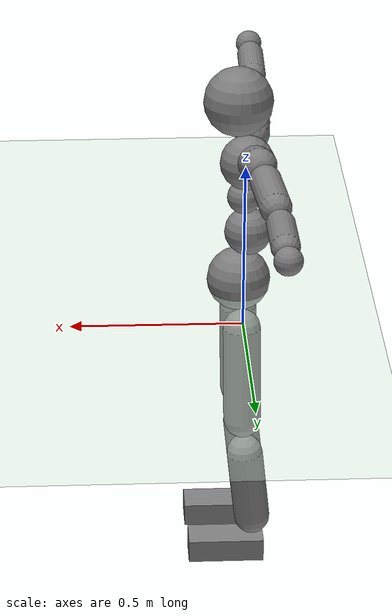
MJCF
<mujoco model="humanoid">
  <compiler coordinate="local"/>
  <statistic extent="2" center="0 0 1"/>
  <option timestep="0.00555"/>
  <default>
    <motor ctrlrange="-1 1" ctrllimited="true"/>
    <geom type="capsule" condim="1" friction="1.0 0.05 0.05" solimp=".9 .99 .003" solref=".015 1"/>
    <joint type="hinge" damping="0.1" stiffness="5" armature=".007" limited="true" solimplimit="0 .99 .01"/>
    <site size=".04" group="3"/>
    <default class="force-torque">
      <site type="box" size=".01 .01 .02" rgba="1 0 0 1"/>
    </default>
    <default class="touch">
      <site type="capsule" rgba="0 0 1 .3"/>
    </default>
  </default>
  <asset>
    <texture type="skybox" builtin="gradient" rgb1=".4 .5 .6" rgb2="0 0 0" width="100" height="100"/>
    <texture builtin="flat" height="1278" mark="cross" markrgb="1 1 1" name="texgeom" random="0.01" rgb1="0.8 0.6 0.4" rgb2="0.8 0.6 0.4" type="cube" width="127"/>
    <texture builtin="checker" height="100" name="texplane" rgb1="0 0 0" rgb2="0.8 0.8 0.8" type="2d" width="100"/>
    <material name="MatPlane" reflectance="0.5" shininess="1" specular="1" texrepeat="60 60" texture="texplane"/>
    <material name="geom" texture="texgeom" texuniform="true"/>
  </asset>
  <worldbody>
    <light cutoff="100" diffuse="1 1 1" dir="-0 0 -1.3" directional="true" exponent="1" pos="0 0 1.3" specular=".1 .1 .1"/>
    <geom conaffinity="1" condim="3" name="floor" pos="0 0 0" rgba="0.8 0.9 0.8 1" size="100 100 .2" type="plane" material="MatPlane"/>
    <body name="Pelvis" pos="-0.0018 -0.2233 0.0282">
      <freejoint name="Pelvis"/>
      <geom type="sphere" contype="1" conaffinity="1" density="1999.2020898" size="0.0942" pos="0.0000 0.0000 0.0000"/>
      <body name="L_Hip" pos="-0.0068 0.0695 -0.0914">
        <joint name="L_Hip_x" type="hinge" pos="0.0000 0.0000 0.0000" axis="1.0000 0.0000 0.0000" stiffness="500" damping="50" armature="0.02" range="-90.0000 90.0000"/>
        <joint name="L_Hip_y" type="hinge" pos="0.0000 0.0000 0.0000" axis="0.0000 1.0000 0.0000" stiffness="500" damping="50" armature="0.02" range="-90.0000 90.0000"/>
        <joint name="L_Hip_z" type="hinge" pos="0.0000 0.0000 0.0000" axis="0.0000 0.0000 1.0000" stiffness="500" damping="50" armature="0.02" range="-90.0000 90.0000"/>
        <geom type="capsule" contype="1" conaffinity="1" density="1195.48521" fromto="-0.0004 0.0034 -0.0375 -0.0040 0.0308 -0.3377" size="0.0564"/>
        <body name="L_Knee" pos="-0.0045 0.0343 -0.3752">
          <joint name="L_Knee_x" type="hinge" pos="0.0000 0.0000 0.0000" axis="1.0000 0.0000 0.0000" stiffness="500" damping="50" armature="0.02" range="-5.6250 5.6250"/>
          <joint name="L_Knee_y" type="hinge" pos="0.0000 0.0000 0.0000" axis="0.0000 1.0000 0.0000" stiffness="500" damping="50" armature="0.02" range="0.0000 180.0000"/>
          <joint name="L_Knee_z" type="hinge" pos="0.0000 0.0000 0.0000" axis="0.0000 0.0000 1.0000" stiffness="500" damping="50" armature="0.02" range="-5.6250 5.6250"/>
          <geom type="capsule" contype="1" conaffinity="1" density="1044.006" fromto="-0.0087 -0.0027 -0.0796 -0.0350 -0.0109 -0.3184" size="0.0541"/>
          <body name="L_Ankle" pos="-0.0437 -0.0136 -0.3980">
            <joint name="L_Ankle_x" type="hinge" pos="0.0000 0.0000 0.0000" axis="1.0000 0.0000 0.0000" stiffness="400" damping="40" armature="0.01" range="-45.0000 45.0000"/>
            <joint name="L_Ankle_y" type="hinge" pos="0.0000 0.0000 0.0000" axis="0.0000 1.0000 0.0000" stiffness="400" damping="40" armature="0.01" range="-90.0000 90.0000"/>
            <joint name="L_Ankle_z" type="hinge" pos="0.0000 0.0000 0.0000" axis="0.0000 0.0000 1.0000" stiffness="400" damping="40" armature="0.01" range="-45.0000 45.0000"/>
            <geom type="box" contype="1" conaffinity="1" density="628.611" pos="0.0896 0.0132 -0.0129" size="0.1150 0.0483 0.0358" quat="1.0000 0.0000 0.0000 0.0000"/>
          </body>
        </body>
      </body>
      <body name="R_Hip" pos="-0.0043 -0.0677 -0.0905">
        <joint name="R_Hip_x" type="hinge" pos="0.0000 0.0000 0.0000" axis="1.0000 0.0000 0.0000" stiffness="500" damping="50" armature="0.02" range="-90.0000 90.0000"/>
        <joint name="R_Hip_y" type="hinge" pos="0.0000 0.0000 0.0000" axis="0.0000 1.0000 0.0000" stiffness="500" damping="50" armature="0.02" range="-90.0000 90.0000"/>
        <joint name="R_Hip_z" type="hinge" pos="0.0000 0.0000 0.0000" axis="0.0000 0.0000 1.0000" stiffness="500" damping="50" armature="0.02" range="-90.0000 90.0000"/>
        <geom type="capsule" contype="1" conaffinity="1" density="1223.393" fromto="-0.0009 -0.0038 -0.0383 -0.0080 -0.0345 -0.3443" size="0.0554"/>
        <body name="R_Knee" pos="-0.0089 -0.0383 -0.3826">
          <joint name="R_Knee_x" type="hinge" pos="0.0000 0.0000 0.0000" axis="1.0000 0.0000 0.0000" stiffness="500" damping="50" armature="0.02" range="-5.6250 5.6250"/>
          <joint name="R_Knee_y" type="hinge" pos="0.0000 0.0000 0.0000" axis="0.0000 1.0000 0.0000" stiffness="500" damping="50" armature="0.02" range="0.0000 180.0000"/>
          <joint name="R_Knee_z" type="hinge" pos="0.0000 0.0000 0.0000" axis="0.0000 0.0000 1.0000" stiffness="500" damping="50" armature="0.02" range="-5.6250 5.6250"/>
          <geom type="capsule" contype="1" conaffinity="1" density="1043.554" fromto="-0.0085 0.0032 -0.0797 -0.0338 0.0126 -0.3187" size="0.0541"/>
          <body name="R_Ankle" pos="-0.0423 0.0158 -0.3984">
            <joint name="R_Ankle_x" type="hinge" pos="0.0000 0.0000 0.0000" axis="1.0000 0.0000 0.0000" stiffness="400" damping="40" armature="0.01" range="-45.0000 45.0000"/>
            <joint name="R_Ankle_y" type="hinge" pos="0.0000 0.0000 0.0000" axis="0.0000 1.0000 0.0000" stiffness="400" damping="40" armature="0.01" range="-90.0000 90.0000"/>
            <joint name="R_Ankle_z" type="hinge" pos="0.0000 0.0000 0.0000" axis="0.0000 0.0000 1.0000" stiffness="400" damping="40" armature="0.01" range="-45.0000 45.0000"/>
            <geom type="box" contype="1" conaffinity="1" density="620.517" pos="0.0917 -0.0127 -0.0091" size="0.1165 0.0483 0.0358" quat="1.0000 0.0000 0.0000 0.0000"/>
          </body>
        </body>
      </body>
      <body name="Torso" pos="-0.0267 -0.0025 0.1090">
        <joint name="Torso_x" type="hinge" pos="0.0000 0.0000 0.0000" axis="1.0000 0.0000 0.0000" stiffness="500" damping="50" armature="0.02" range="-60.0000 60.0000"/>
        <joint name="Torso_y" type="hinge" pos="0.0000 0.0000 0.0000" axis="0.0000 1.0000 0.0000" stiffness="500" damping="50" armature="0.02" range="-30.0000 60.0000"/>
        <joint name="Torso_z" type="hinge" pos="0.0000 0.0000 0.0000" axis="0.0000 0.0000 1.0000" stiffness="500" damping="50" armature="0.02" range="-60.0000 60.0000"/>
        <geom type="sphere" contype="1" conaffinity="1" density="2088.0388" size="0.07" pos="0.00055 0.00275 0.0476"/>
        <body name="Spine" pos="0.0011 0.0055 0.1352">
          <joint name="Spine_x" type="hinge" pos="0.0000 0.0000 0.0000" axis="1.0000 0.0000 0.0000" stiffness="500" damping="50" armature="0.02" range="-60.0000 60.0000"/>
          <joint name="Spine_y" type="hinge" pos="0.0000 0.0000 0.0000" axis="0.0000 1.0000 0.0000" stiffness="500" damping="50" armature="0.02" range="-30.0000 60.0000"/>
          <joint name="Spine_z" type="hinge" pos="0.0000 0.0000 0.0000" axis="0.0000 0.0000 1.0000" stiffness="500" damping="50" armature="0.02" range="-60.0000 60.0000"/>
          <geom type="sphere" contype="1" conaffinity="1" density="1909.8591916" size="0.05" pos="0.0127 0.00075 0.02645"/>
          <body name="Chest" pos="0.0254 0.0015 0.0529">
            <joint name="Chest_x" type="hinge" pos="0.0000 0.0000 0.0000" axis="1.0000 0.0000 0.0000" stiffness="500" damping="50" armature="0.02" range="-60.0000 60.0000"/>
            <joint name="Chest_y" type="hinge" pos="0.0000 0.0000 0.0000" axis="0.0000 1.0000 0.0000" stiffness="500" damping="50" armature="0.02" range="-30.0000 60.0000"/>
            <joint name="Chest_z" type="hinge" pos="0.0000 0.0000 0.0000" axis="0.0000 0.0000 1.0000" stiffness="500" damping="50" armature="0.02" range="-60.0000 60.0000"/>
            <geom type="sphere" contype="1" conaffinity="1" density="2331.3718" size="0.08" pos="-0.02 -0.0010 0.0833"/>
            <body name="Neck" pos="-0.0429 -0.0028 0.2139">
              <joint name="Neck_x" type="hinge" pos="0.0000 0.0000 0.0000" axis="1.0000 0.0000 0.0000" stiffness="100" damping="10" armature="0.01" range="-60.0000 60.0000"/>
              <joint name="Neck_y" type="hinge" pos="0.0000 0.0000 0.0000" axis="0.0000 1.0000 0.0000" stiffness="100" damping="10" armature="0.01" range="-60.0000 60.0000"/>
              <joint name="Neck_z" type="hinge" pos="0.0000 0.0000 0.0000" axis="0.0000 0.0000 1.0000" stiffness="100" damping="10" armature="0.01" range="-60.0000 60.0000"/>
              <geom type="sphere" contype="1" conaffinity="1" density="924.0978" size="0.1011" pos="0.0513 0.0052 0.0650"/>
            </body>
            <body name="L_Thorax" pos="-0.0341 0.0788 0.1217">
              <joint name="L_Thorax_x" type="hinge" pos="0.0000 0.0000 0.0000" axis="1.0000 0.0000 0.0000" stiffness="400" damping="40" armature="0.02" range="-90.0000 90.0000"/>
              <joint name="L_Thorax_y" type="hinge" pos="0.0000 0.0000 0.0000" axis="0.0000 1.0000 0.0000" stiffness="400" damping="40" armature="0.02" range="-90.0000 90.0000"/>
              <joint name="L_Thorax_z" type="hinge" pos="0.0000 0.0000 0.0000" axis="0.0000 0.0000 1.0000" stiffness="400" damping="40" armature="0.02" range="-90.0000 90.0000"/>
              <geom type="capsule" contype="1" conaffinity="1" density="921.21832" fromto="-0.0018 0.0182 0.0061 -0.0071 0.0728 0.0244" size="0.0521"/>
              <body name="L_Shoulder" pos="-0.0089 0.0910 0.0305">
                <joint name="L_Shoulder_x" type="hinge" pos="0.0000 0.0000 0.0000" axis="1.0000 0.0000 0.0000" stiffness="400" damping="40" armature="0.02" range="-135.0000 90.0000"/>
                <joint name="L_Shoulder_y" type="hinge" pos="0.0000 0.0000 0.0000" axis="0.0000 1.0000 0.0000" stiffness="400" damping="40" armature="0.02" range="-90.0000 90.0000"/>
                <joint name="L_Shoulder_z" type="hinge" pos="0.0000 0.0000 0.0000" axis="0.0000 0.0000 1.0000" stiffness="400" damping="40" armature="0.02" range="-135.0000 60.0000"/>
                <geom type="capsule" contype="1" conaffinity="1" density="1093.45624" fromto="-0.00847662 0.08000646 -0.00397105 -0.024848 0.23459204 -0.0115118" size="0.045"/>
                <body name="L_Elbow" pos="-0.02960433  0.27946485 -0.01377947">
                  <joint name="L_Elbow_x" type="hinge" pos="0.0000 0.0000 0.0000" axis="1.0000 0.0000 0.0000" stiffness="300" damping="30" armature="0.01" range="-5.6250 5.6250"/>
                  <joint name="L_Elbow_y" type="hinge" pos="0.0000 0.0000 0.0000" axis="0.0000 1.0000 0.0000" stiffness="300" damping="30" armature="0.01" range="-5.6250 5.6250"/>
                  <joint name="L_Elbow_z" type="hinge" pos="0.0000 0.0000 0.0000" axis="0.0000 0.0000 1.0000" stiffness="300" damping="30" armature="0.01" range="-180.0000 0.0000"/>
                  <geom type="capsule" contype="1" conaffinity="1" density="979.86187" fromto="-0.0002 0.0498 0.0018 -0.0009 0.1994 0.0072" size="0.04"/>
                  <body name="L_Wrist" pos="-0.0012 0.2492 0.0090">
                    <geom type="sphere" contype="1" conaffinity="1" density="1865" size="0.04" pos="0.0000 0.03 0.0000"/>
                  </body>
                </body>
              </body>
            </body>
            <body name="R_Thorax" pos="-0.0386 -0.0818 0.1188">
              <joint name="R_Thorax_x" type="hinge" pos="0.0000 0.0000 0.0000" axis="1.0000 0.0000 0.0000" stiffness="400" damping="40" armature="0.02" range="-90.0000 90.0000"/>
              <joint name="R_Thorax_y" type="hinge" pos="0.0000 0.0000 0.0000" axis="0.0000 1.0000 0.0000" stiffness="400" damping="40" armature="0.02" range="-90.0000 90.0000"/>
              <joint name="R_Thorax_z" type="hinge" pos="0.0000 0.0000 0.0000" axis="0.0000 0.0000 1.0000" stiffness="400" damping="40" armature="0.02" range="-90.0000 90.0000"/>
              <geom type="capsule" contype="1" conaffinity="1" density="943.5609" fromto="-0.0018 -0.0192 0.0065 -0.0073 -0.0768 0.0260" size="0.0511"/>
              <body name="R_Shoulder" pos="-0.0091 -0.0960 0.0326">
                <joint name="R_Shoulder_x" type="hinge" pos="0.0000 0.0000 0.0000" axis="1.0000 0.0000 0.0000" stiffness="400" damping="40" armature="0.02" range="-90.0000 135.0000"/>
                <joint name="R_Shoulder_y" type="hinge" pos="0.0000 0.0000 0.0000" axis="0.0000 1.0000 0.0000" stiffness="400" damping="40" armature="0.02" range="-90.0000 90.0000"/>
                <joint name="R_Shoulder_z" type="hinge" pos="0.0000 0.0000 0.0000" axis="0.0000 0.0000 1.0000" stiffness="400" damping="40" armature="0.02" range="-60.0000 135.0000"/>
                <geom type="capsule" contype="1" conaffinity="1" density="1110.7235919" fromto="-0.00661563 -0.0782524 -0.00414727 -0.01935161 -0.22979059 -0.01210726" size="0.045"/>
                <body name="R_Elbow" pos="-0.02307877 -0.27360209 -0.01434335">
                  <joint name="R_Elbow_x" type="hinge" pos="0.0000 0.0000 0.0000" axis="1.0000 0.0000 0.0000" stiffness="300" damping="30" armature="0.01" range="-5.6250 5.6250"/>
                  <joint name="R_Elbow_y" type="hinge" pos="0.0000 0.0000 0.0000" axis="0.0000 1.0000 0.0000" stiffness="300" damping="30" armature="0.01" range="-5.6250 5.6250"/>
                  <joint name="R_Elbow_z" type="hinge" pos="0.0000 0.0000 0.0000" axis="0.0000 0.0000 1.0000" stiffness="300" damping="30" armature="0.01" range="0.0000 180.0000"/>
                  <geom type="capsule" contype="1" conaffinity="1" density="963.23059" fromto="-0.0011 -0.0511 0.0016 -0.0044 -0.2042 0.0062" size="0.04"/>
                  <body name="R_Wrist" pos="-0.0056 -0.2553 0.0078">
                    <geom type="sphere" contype="1" conaffinity="1" density="1865" size="0.04" pos="0.0000 -0.03 0.0000"/>
                  </body>
                </body>
              </body>
            </body>
          </body>
        </body>
      </body>
    </body>
  </worldbody>
  <actuator>
    <motor name="L_Hip_x" joint="L_Hip_x" gear="500"/>
    <motor name="L_Hip_y" joint="L_Hip_y" gear="500"/>
    <motor name="L_Hip_z" joint="L_Hip_z" gear="500"/>
    <motor name="L_Knee_x" joint="L_Knee_x" gear="500"/>
    <motor name="L_Knee_y" joint="L_Knee_y" gear="500"/>
    <motor name="L_Knee_z" joint="L_Knee_z" gear="500"/>
    <motor name="L_Ankle_x" joint="L_Ankle_x" gear="500"/>
    <motor name="L_Ankle_y" joint="L_Ankle_y" gear="500"/>
    <motor name="L_Ankle_z" joint="L_Ankle_z" gear="500"/>
    <motor name="R_Hip_x" joint="R_Hip_x" gear="500"/>
    <motor name="R_Hip_y" joint="R_Hip_y" gear="500"/>
    <motor name="R_Hip_z" joint="R_Hip_z" gear="500"/>
    <motor name="R_Knee_x" joint="R_Knee_x" gear="500"/>
    <motor name="R_Knee_y" joint="R_Knee_y" gear="500"/>
    <motor name="R_Knee_z" joint="R_Knee_z" gear="500"/>
    <motor name="R_Ankle_x" joint="R_Ankle_x" gear="500"/>
    <motor name="R_Ankle_y" joint="R_Ankle_y" gear="500"/>
    <motor name="R_Ankle_z" joint="R_Ankle_z" gear="500"/>
    <motor name="Torso_x" joint="Torso_x" gear="500"/>
    <motor name="Torso_y" joint="Torso_y" gear="500"/>
    <motor name="Torso_z" joint="Torso_z" gear="500"/>
    <motor name="Spine_x" joint="Spine_x" gear="500"/>
    <motor name="Spine_y" joint="Spine_y" gear="500"/>
    <motor name="Spine_z" joint="Spine_z" gear="500"/>
    <motor name="Chest_x" joint="Chest_x" gear="500"/>
    <motor name="Chest_y" joint="Chest_y" gear="500"/>
    <motor name="Chest_z" joint="Chest_z" gear="500"/>
    <motor name="Neck_x" joint="Neck_x" gear="500"/>
    <motor name="Neck_y" joint="Neck_y" gear="500"/>
    <motor name="Neck_z" joint="Neck_z" gear="500"/>
    <motor name="L_Thorax_x" joint="L_Thorax_x" gear="500"/>
    <motor name="L_Thorax_y" joint="L_Thorax_y" gear="500"/>
    <motor name="L_Thorax_z" joint="L_Thorax_z" gear="500"/>
    <motor name="L_Shoulder_x" joint="L_Shoulder_x" gear="500"/>
    <motor name="L_Shoulder_y" joint="L_Shoulder_y" gear="500"/>
    <motor name="L_Shoulder_z" joint="L_Shoulder_z" gear="500"/>
    <motor name="L_Elbow_x" joint="L_Elbow_x" gear="500"/>
    <motor name="L_Elbow_y" joint="L_Elbow_y" gear="500"/>
    <motor name="L_Elbow_z" joint="L_Elbow_z" gear="500"/>
    <motor name="R_Thorax_x" joint="R_Thorax_x" gear="500"/>
    <motor name="R_Thorax_y" joint="R_Thorax_y" gear="500"/>
    <motor name="R_Thorax_z" joint="R_Thorax_z" gear="500"/>
    <motor name="R_Shoulder_x" joint="R_Shoulder_x" gear="500"/>
    <motor name="R_Shoulder_y" joint="R_Shoulder_y" gear="500"/>
    <motor name="R_Shoulder_z" joint="R_Shoulder_z" gear="500"/>
    <motor name="R_Elbow_x" joint="R_Elbow_x" gear="500"/>
    <motor name="R_Elbow_y" joint="R_Elbow_y" gear="500"/>
    <motor name="R_Elbow_z" joint="R_Elbow_z" gear="500"/>
  </actuator>
  <contact/>
  <size njmax="700" nconmax="700"/>
</mujoco>
